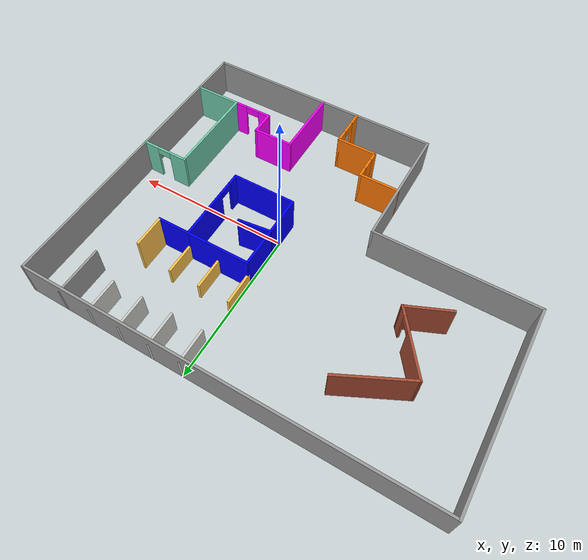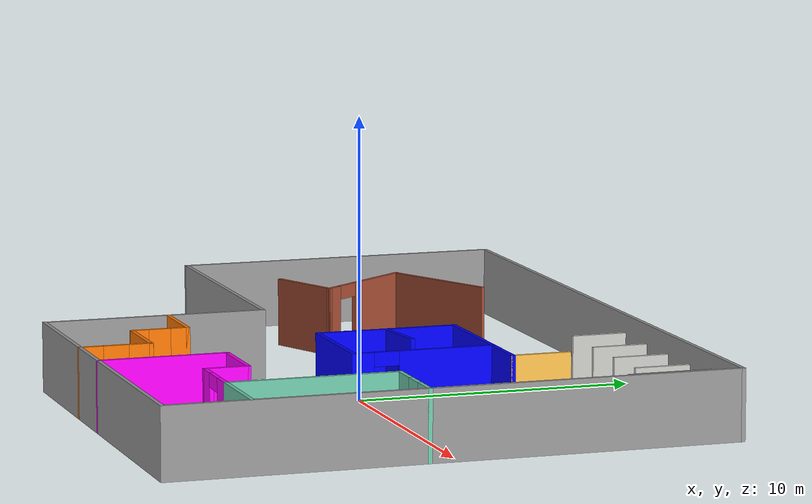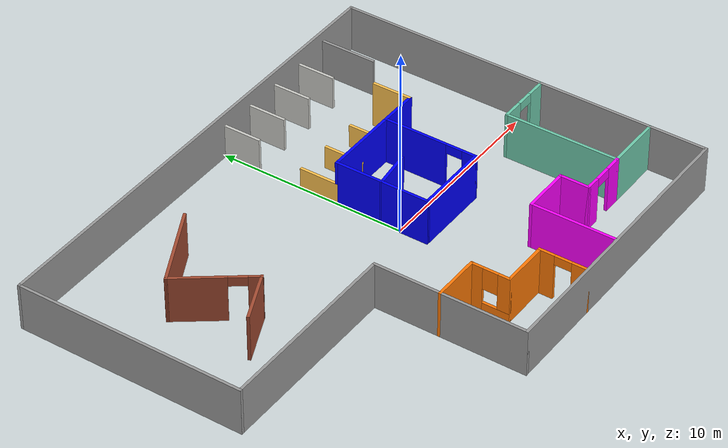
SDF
<?xml version='1.0'?>
<sdf version='1.6'>
  <model name='model'>
    <pose frame=''>-2.25 0 0 0 -0 0</pose>
    <link name='Wall_0'>
      <collision name='Wall_0_Collision'>
        <geometry>
          <box>
            <size>12.15 0.15 2.5</size>
          </box>
        </geometry>
        <pose frame=''>0 0 1.25 0 -0 0</pose>
      </collision>
      <visual name='Wall_0_Visual'>
        <pose frame=''>0 0 1.25 0 -0 0</pose>
        <geometry>
          <box>
            <size>12.15 0.15 2.5</size>
          </box>
        </geometry>
        <material>
          <script>
            <uri>file://media/materials/scripts/gazebo.material</uri>
            <name>Gazebo/Grey</name>
          </script>
          <ambient>1 1 1 1</ambient>
        </material>
        <meta>
          <layer>0</layer>
        </meta>
      </visual>
      <pose frame=''>-12.75 4 0 0 0 -1.5708</pose>
    </link>
    <link name='Wall_1'>
      <collision name='Wall_1_Collision'>
        <geometry>
          <box>
            <size>10.15 0.15 2.5</size>
          </box>
        </geometry>
        <pose frame=''>0 0 1.25 0 -0 0</pose>
      </collision>
      <visual name='Wall_1_Visual'>
        <pose frame=''>0 0 1.25 0 -0 0</pose>
        <geometry>
          <box>
            <size>10.15 0.15 2.5</size>
          </box>
        </geometry>
        <material>
          <script>
            <uri>file://media/materials/scripts/gazebo.material</uri>
            <name>Gazebo/Grey</name>
          </script>
          <ambient>1 1 1 1</ambient>
        </material>
        <meta>
          <layer>0</layer>
        </meta>
      </visual>
      <pose frame=''>-7.75 -2 0 0 -0 0</pose>
    </link>
    <link name='Wall_11'>
      <collision name='Wall_11_Collision'>
        <geometry>
          <box>
            <size>5.15 0.15 2.5</size>
          </box>
        </geometry>
        <pose frame=''>0 0 1.25 0 -0 0</pose>
      </collision>
      <visual name='Wall_11_Visual'>
        <pose frame=''>0 0 1.25 0 -0 0</pose>
        <geometry>
          <box>
            <size>5.15 0.15 2.5</size>
          </box>
        </geometry>
        <material>
          <script>
            <uri>file://media/materials/scripts/gazebo.material</uri>
            <name>Gazebo/Grey</name>
          </script>
          <ambient>0 0 1 1</ambient>
        </material>
        <meta>
          <layer>0</layer>
        </meta>
      </visual>
      <pose frame=''>2.25 1 0 0 0 -1.5708</pose>
    </link>
    <link name='Wall_12'>
      <collision name='Wall_12_Collision'>
        <geometry>
          <box>
            <size>4.15 0.15 2.5</size>
          </box>
        </geometry>
        <pose frame=''>0 0 1.25 0 -0 0</pose>
      </collision>
      <visual name='Wall_12_Visual'>
        <pose frame=''>0 0 1.25 0 -0 0</pose>
        <geometry>
          <box>
            <size>4.15 0.15 2.5</size>
          </box>
        </geometry>
        <material>
          <script>
            <uri>file://media/materials/scripts/gazebo.material</uri>
            <name>Gazebo/Grey</name>
          </script>
          <ambient>0 0 1 1</ambient>
        </material>
        <meta>
          <layer>0</layer>
        </meta>
      </visual>
      <pose frame=''>4.25 -1.5 0 0 -0 0</pose>
    </link>
    <link name='Wall_13'>
      <pose frame=''>6.25 1 0 0 -0 1.5708</pose>
      <visual name='Wall_13_Visual_0'>
        <pose frame=''>-2.18435 0 1.25 0 -0 0</pose>
        <geometry>
          <box>
            <size>0.781301 0.15 2.5</size>
          </box>
        </geometry>
        <material>
          <script>
            <uri>file://media/materials/scripts/gazebo.material</uri>
            <name>Gazebo/Grey</name>
          </script>
          <ambient>0 0 1 1</ambient>
        </material>
        <meta>
          <layer>0</layer>
        </meta>
      </visual>
      <collision name='Wall_13_Collision_0'>
        <geometry>
          <box>
            <size>0.781301 0.15 2.5</size>
          </box>
        </geometry>
        <pose frame=''>-2.18435 0 1.25 0 -0 0</pose>
      </collision>
      <visual name='Wall_13_Visual_1'>
        <pose frame=''>0.840651 0 1.25 0 -0 0</pose>
        <geometry>
          <box>
            <size>3.4687 0.15 2.5</size>
          </box>
        </geometry>
        <material>
          <script>
            <uri>file://media/materials/scripts/gazebo.material</uri>
            <name>Gazebo/Grey</name>
          </script>
          <ambient>0 0 1 1</ambient>
        </material>
        <meta>
          <layer>0</layer>
        </meta>
      </visual>
      <collision name='Wall_13_Collision_1'>
        <geometry>
          <box>
            <size>3.4687 0.15 2.5</size>
          </box>
        </geometry>
        <pose frame=''>0.840651 0 1.25 0 -0 0</pose>
      </collision>
      <visual name='Wall_13_Visual_2'>
        <pose frame=''>-1.3437 0 2.25 0 -0 0</pose>
        <geometry>
          <box>
            <size>0.9 0.15 0.5</size>
          </box>
        </geometry>
        <material>
          <script>
            <uri>file://media/materials/scripts/gazebo.material</uri>
            <name>Gazebo/Grey</name>
          </script>
          <ambient>0 0 1 1</ambient>
        </material>
        <meta>
          <layer>0</layer>
        </meta>
      </visual>
      <collision name='Wall_13_Collision_2'>
        <geometry>
          <box>
            <size>0.9 0.15 0.5</size>
          </box>
        </geometry>
        <pose frame=''>-1.3437 0 2.25 0 -0 0</pose>
      </collision>
    </link>
    <link name='Wall_16'>
      <collision name='Wall_16_Collision'>
        <geometry>
          <box>
            <size>4.15 0.15 2.5</size>
          </box>
        </geometry>
        <pose frame=''>0 0 1.25 0 -0 0</pose>
      </collision>
      <visual name='Wall_16_Visual'>
        <pose frame=''>0 0 1.25 0 -0 0</pose>
        <geometry>
          <box>
            <size>4.15 0.15 2.5</size>
          </box>
        </geometry>
        <material>
          <script>
            <uri>file://media/materials/scripts/gazebo.material</uri>
            <name>Gazebo/Grey</name>
          </script>
          <ambient>0 0 1 1</ambient>
        </material>
        <meta>
          <layer>0</layer>
        </meta>
      </visual>
      <pose frame=''>4.25 3.5 0 0 -0 0</pose>
    </link>
    <link name='Wall_18'>
      <collision name='Wall_18_Collision'>
        <geometry>
          <box>
            <size>2.15 0.15 1.85</size>
          </box>
        </geometry>
        <pose frame=''>0 0 0.925 0 -0 0</pose>
      </collision>
      <visual name='Wall_18_Visual'>
        <pose frame=''>0 0 0.925 0 -0 0</pose>
        <geometry>
          <box>
            <size>2.15 0.15 1.85</size>
          </box>
        </geometry>
        <material>
          <script>
            <uri>file://media/materials/scripts/gazebo.material</uri>
            <name>Gazebo/CeilingTiled</name>
          </script>
          <ambient>0 0.333333 0.498039 1</ambient>
        </material>
        <meta>
          <layer>0</layer>
        </meta>
      </visual>
      <pose frame=''>2.25 9 0 0 0 -1.5708</pose>
    </link>
    <link name='Wall_2'>
      <collision name='Wall_2_Collision'>
        <geometry>
          <box>
            <size>8.15 0.15 2.5</size>
          </box>
        </geometry>
        <pose frame=''>0 0 1.25 0 -0 0</pose>
      </collision>
      <visual name='Wall_2_Visual'>
        <pose frame=''>0 0 1.25 0 -0 0</pose>
        <geometry>
          <box>
            <size>8.15 0.15 2.5</size>
          </box>
        </geometry>
        <material>
          <script>
            <uri>file://media/materials/scripts/gazebo.material</uri>
            <name>Gazebo/Grey</name>
          </script>
          <ambient>1 1 1 1</ambient>
        </material>
        <meta>
          <layer>0</layer>
        </meta>
      </visual>
      <pose frame=''>-2.75 -6 0 0 0 -1.5708</pose>
    </link>
    <link name='Wall_20'>
      <collision name='Wall_20_Collision'>
        <geometry>
          <box>
            <size>2.15 0.15 1.8</size>
          </box>
        </geometry>
        <pose frame=''>0 0 0.9 0 -0 0</pose>
      </collision>
      <visual name='Wall_20_Visual'>
        <pose frame=''>0 0 0.9 0 -0 0</pose>
        <geometry>
          <box>
            <size>2.15 0.15 1.8</size>
          </box>
        </geometry>
        <material>
          <script>
            <uri>file://media/materials/scripts/gazebo.material</uri>
            <name>Gazebo/CeilingTiled</name>
          </script>
          <ambient>0 0.333333 0.498039 1</ambient>
        </material>
        <meta>
          <layer>0</layer>
        </meta>
      </visual>
      <pose frame=''>4.25 9 0 0 0 -1.5708</pose>
    </link>
    <link name='Wall_22'>
      <collision name='Wall_22_Collision'>
        <geometry>
          <box>
            <size>2.15 0.15 1.8</size>
          </box>
        </geometry>
        <pose frame=''>0 0 0.9 0 -0 0</pose>
      </collision>
      <visual name='Wall_22_Visual'>
        <pose frame=''>0 0 0.9 0 -0 0</pose>
        <geometry>
          <box>
            <size>2.15 0.15 1.8</size>
          </box>
        </geometry>
        <material>
          <script>
            <uri>file://media/materials/scripts/gazebo.material</uri>
            <name>Gazebo/CeilingTiled</name>
          </script>
          <ambient>0 0.333333 0.498039 1</ambient>
        </material>
        <meta>
          <layer>0</layer>
        </meta>
      </visual>
      <pose frame=''>6.25 9 0 0 0 -1.5708</pose>
    </link>
    <link name='Wall_24'>
      <collision name='Wall_24_Collision'>
        <geometry>
          <box>
            <size>2.15 0.15 1.8</size>
          </box>
        </geometry>
        <pose frame=''>0 0 0.9 0 -0 0</pose>
      </collision>
      <visual name='Wall_24_Visual'>
        <pose frame=''>0 0 0.9 0 -0 0</pose>
        <geometry>
          <box>
            <size>2.15 0.15 1.8</size>
          </box>
        </geometry>
        <material>
          <script>
            <uri>file://media/materials/scripts/gazebo.material</uri>
            <name>Gazebo/CeilingTiled</name>
          </script>
          <ambient>0 0.333333 0.498039 1</ambient>
        </material>
        <meta>
          <layer>0</layer>
        </meta>
      </visual>
      <pose frame=''>8.25 9 0 0 0 -1.5708</pose>
    </link>
    <link name='Wall_26'>
      <collision name='Wall_26_Collision'>
        <geometry>
          <box>
            <size>2.15 0.15 1.25</size>
          </box>
        </geometry>
        <pose frame=''>0 0 0.625 0 -0 0</pose>
      </collision>
      <visual name='Wall_26_Visual'>
        <pose frame=''>0 0 0.625 0 -0 0</pose>
        <geometry>
          <box>
            <size>2.15 0.15 1.25</size>
          </box>
        </geometry>
        <material>
          <script>
            <uri>file://media/materials/scripts/gazebo.material</uri>
            <name>Gazebo/Grey</name>
          </script>
          <ambient>1 0.764706 0.305882 1</ambient>
        </material>
        <meta>
          <layer>0</layer>
        </meta>
      </visual>
      <pose frame=''>2.25 4.5 0 0 0 -1.5708</pose>
    </link>
    <link name='Wall_28'>
      <collision name='Wall_28_Collision'>
        <geometry>
          <box>
            <size>2.15 0.15 1.25</size>
          </box>
        </geometry>
        <pose frame=''>0 0 0.625 0 -0 0</pose>
      </collision>
      <visual name='Wall_28_Visual'>
        <pose frame=''>0 0 0.625 0 -0 0</pose>
        <geometry>
          <box>
            <size>2.15 0.15 1.25</size>
          </box>
        </geometry>
        <material>
          <script>
            <uri>file://media/materials/scripts/gazebo.material</uri>
            <name>Gazebo/Grey</name>
          </script>
          <ambient>1 0.764706 0.305882 1</ambient>
        </material>
        <meta>
          <layer>0</layer>
        </meta>
      </visual>
      <pose frame=''>4.25 4.5 0 0 -0 1.5708</pose>
    </link>
    <link name='Wall_3'>
      <collision name='Wall_3_Collision'>
        <geometry>
          <box>
            <size>15.65 0.15 2.5</size>
          </box>
        </geometry>
        <pose frame=''>0 0 1.25 0 -0 0</pose>
      </collision>
      <visual name='Wall_3_Visual'>
        <pose frame=''>0 0 1.25 0 -0 0</pose>
        <geometry>
          <box>
            <size>15.65 0.15 2.5</size>
          </box>
        </geometry>
        <material>
          <script>
            <uri>file://media/materials/scripts/gazebo.material</uri>
            <name>Gazebo/Grey</name>
          </script>
          <ambient>1 1 1 1</ambient>
        </material>
        <meta>
          <layer>0</layer>
        </meta>
      </visual>
      <pose frame=''>5 -10 0 0 -0 0</pose>
    </link>
    <link name='Wall_30'>
      <collision name='Wall_30_Collision'>
        <geometry>
          <box>
            <size>2.15 0.15 1.25</size>
          </box>
        </geometry>
        <pose frame=''>0 0 0.625 0 -0 0</pose>
      </collision>
      <visual name='Wall_30_Visual'>
        <pose frame=''>0 0 0.625 0 -0 0</pose>
        <geometry>
          <box>
            <size>2.15 0.15 1.25</size>
          </box>
        </geometry>
        <material>
          <script>
            <uri>file://media/materials/scripts/gazebo.material</uri>
            <name>Gazebo/Grey</name>
          </script>
          <ambient>1 0.764706 0.305882 1</ambient>
        </material>
        <meta>
          <layer>0</layer>
        </meta>
      </visual>
      <pose frame=''>6.25 4.5 0 0 0 -1.5708</pose>
    </link>
    <link name='Wall_32'>
      <collision name='Wall_32_Collision'>
        <geometry>
          <box>
            <size>3.15 0.15 2</size>
          </box>
        </geometry>
        <pose frame=''>0 0 1 0 -0 0</pose>
      </collision>
      <visual name='Wall_32_Visual'>
        <pose frame=''>0 0 1 0 -0 0</pose>
        <geometry>
          <box>
            <size>3.15 0.15 2</size>
          </box>
        </geometry>
        <material>
          <script>
            <uri>file://media/materials/scripts/gazebo.material</uri>
            <name>Gazebo/Grey</name>
          </script>
          <ambient>0.207843 0.207843 0.207843 1</ambient>
        </material>
        <meta>
          <layer>0</layer>
        </meta>
      </visual>
      <pose frame=''>10.25 8.5 0 0 0 -1.5708</pose>
    </link>
    <link name='Wall_34'>
      <collision name='Wall_34_Collision'>
        <geometry>
          <box>
            <size>2.15 0.15 2.5</size>
          </box>
        </geometry>
        <pose frame=''>0 0 1.25 0 -0 0</pose>
      </collision>
      <visual name='Wall_34_Visual'>
        <pose frame=''>0 0 1.25 0 -0 0</pose>
        <geometry>
          <box>
            <size>2.15 0.15 2.5</size>
          </box>
        </geometry>
        <material>
          <script>
            <uri>file://media/materials/scripts/gazebo.material</uri>
            <name>Gazebo/Grey</name>
          </script>
          <ambient>1 0.764706 0.305882 1</ambient>
        </material>
        <meta>
          <layer>0</layer>
        </meta>
      </visual>
      <pose frame=''>8.25 4.5 0 0 0 -1.5708</pose>
    </link>
    <link name='Wall_36'>
      <collision name='Wall_36_Collision'>
        <geometry>
          <box>
            <size>2.15 0.15 2.5</size>
          </box>
        </geometry>
        <pose frame=''>0 0 1.25 0 -0 0</pose>
      </collision>
      <visual name='Wall_36_Visual'>
        <pose frame=''>0 0 1.25 0 -0 0</pose>
        <geometry>
          <box>
            <size>2.15 0.15 2.5</size>
          </box>
        </geometry>
        <material>
          <script>
            <uri>file://media/materials/scripts/gazebo.material</uri>
            <name>Gazebo/Grey</name>
          </script>
          <ambient>0 0 1 1</ambient>
        </material>
        <meta>
          <layer>0</layer>
        </meta>
      </visual>
      <pose frame=''>7.25 3.5 0 0 -0 3.14159</pose>
    </link>
    <link name='Wall_38'>
      <collision name='Wall_38_Collision'>
        <geometry>
          <box>
            <size>2.65 0.15 2.5</size>
          </box>
        </geometry>
        <pose frame=''>0 0 1.25 0 -0 0</pose>
      </collision>
      <visual name='Wall_38_Visual'>
        <pose frame=''>0 0 1.25 0 -0 0</pose>
        <geometry>
          <box>
            <size>2.65 0.15 2.5</size>
          </box>
        </geometry>
        <material>
          <script>
            <uri>file://media/materials/scripts/gazebo.material</uri>
            <name>Gazebo/Grey</name>
          </script>
          <ambient>0.996078 0.47451 0.0196078 1</ambient>
        </material>
        <meta>
          <layer>0</layer>
        </meta>
      </visual>
      <pose frame=''>-1.5 -5.5 0 0 -0 0</pose>
    </link>
    <link name='Wall_39'>
      <pose frame=''>-0.25 -6.5 0 0 0 -1.5708</pose>
      <visual name='Wall_39_Visual_0'>
        <pose frame=''>-0.725651 0 1.25 0 -0 0</pose>
        <geometry>
          <box>
            <size>0.698699 0.15 2.5</size>
          </box>
        </geometry>
        <material>
          <script>
            <uri>file://media/materials/scripts/gazebo.material</uri>
            <name>Gazebo/Grey</name>
          </script>
          <ambient>0.996078 0.47451 0.0196078 1</ambient>
        </material>
        <meta>
          <layer>0</layer>
        </meta>
      </visual>
      <collision name='Wall_39_Collision_0'>
        <geometry>
          <box>
            <size>0.698699 0.15 2.5</size>
          </box>
        </geometry>
        <pose frame=''>-0.725651 0 1.25 0 -0 0</pose>
      </collision>
      <visual name='Wall_39_Visual_1'>
        <pose frame=''>0.349349 0 0.25 0 -0 0</pose>
        <geometry>
          <box>
            <size>1.4513 0.15 0.5</size>
          </box>
        </geometry>
        <material>
          <script>
            <uri>file://media/materials/scripts/gazebo.material</uri>
            <name>Gazebo/Grey</name>
          </script>
          <ambient>0.996078 0.47451 0.0196078 1</ambient>
        </material>
        <meta>
          <layer>0</layer>
        </meta>
      </visual>
      <collision name='Wall_39_Collision_1'>
        <geometry>
          <box>
            <size>1.4513 0.15 0.5</size>
          </box>
        </geometry>
        <pose frame=''>0.349349 0 0.25 0 -0 0</pose>
      </collision>
      <visual name='Wall_39_Visual_2'>
        <pose frame=''>0.749349 0 1.5 0 -0 0</pose>
        <geometry>
          <box>
            <size>0.651301 0.15 2</size>
          </box>
        </geometry>
        <material>
          <script>
            <uri>file://media/materials/scripts/gazebo.material</uri>
            <name>Gazebo/Grey</name>
          </script>
          <ambient>0.996078 0.47451 0.0196078 1</ambient>
        </material>
        <meta>
          <layer>0</layer>
        </meta>
      </visual>
      <collision name='Wall_39_Collision_2'>
        <geometry>
          <box>
            <size>0.651301 0.15 2</size>
          </box>
        </geometry>
        <pose frame=''>0.749349 0 1.5 0 -0 0</pose>
      </collision>
      <visual name='Wall_39_Visual_3'>
        <pose frame=''>0.023699 0 1.9 0 -0 0</pose>
        <geometry>
          <box>
            <size>0.8 0.15 1.2</size>
          </box>
        </geometry>
        <material>
          <script>
            <uri>file://media/materials/scripts/gazebo.material</uri>
            <name>Gazebo/Grey</name>
          </script>
          <ambient>0.996078 0.47451 0.0196078 1</ambient>
        </material>
        <meta>
          <layer>0</layer>
        </meta>
      </visual>
      <collision name='Wall_39_Collision_3'>
        <geometry>
          <box>
            <size>0.8 0.15 1.2</size>
          </box>
        </geometry>
        <pose frame=''>0.023699 0 1.9 0 -0 0</pose>
      </collision>
    </link>
    <link name='Wall_4'>
      <collision name='Wall_4_Collision'>
        <geometry>
          <box>
            <size>20.15 0.15 2.5</size>
          </box>
        </geometry>
        <pose frame=''>0 0 1.25 0 -0 0</pose>
      </collision>
      <visual name='Wall_4_Visual'>
        <pose frame=''>0 0 1.25 0 -0 0</pose>
        <geometry>
          <box>
            <size>20.15 0.15 2.5</size>
          </box>
        </geometry>
        <material>
          <script>
            <uri>file://media/materials/scripts/gazebo.material</uri>
            <name>Gazebo/Grey</name>
          </script>
          <ambient>1 1 1 1</ambient>
        </material>
        <meta>
          <layer>0</layer>
        </meta>
      </visual>
      <pose frame=''>12.75 0 0 0 -0 1.5708</pose>
    </link>
    <link name='Wall_40'>
      <collision name='Wall_40_Collision'>
        <geometry>
          <box>
            <size>2.65 0.15 2.5</size>
          </box>
        </geometry>
        <pose frame=''>0 0 1.25 0 -0 0</pose>
      </collision>
      <visual name='Wall_40_Visual'>
        <pose frame=''>0 0 1.25 0 -0 0</pose>
        <geometry>
          <box>
            <size>2.65 0.15 2.5</size>
          </box>
        </geometry>
        <material>
          <script>
            <uri>file://media/materials/scripts/gazebo.material</uri>
            <name>Gazebo/Grey</name>
          </script>
          <ambient>0.996078 0.47451 0.0196078 1</ambient>
        </material>
        <meta>
          <layer>0</layer>
        </meta>
      </visual>
      <pose frame=''>1 -7.5 0 0 -0 0</pose>
    </link>
    <link name='Wall_41'>
      <pose frame=''>2.25 -8.75 0 0 0 -1.5708</pose>
      <visual name='Wall_41_Visual_0'>
        <pose frame=''>-0.89065 0 1.25 0 -0 0</pose>
        <geometry>
          <box>
            <size>0.868699 0.15 2.5</size>
          </box>
        </geometry>
        <material>
          <script>
            <uri>file://media/materials/scripts/gazebo.material</uri>
            <name>Gazebo/Grey</name>
          </script>
          <ambient>0.996078 0.47451 0.0196078 1</ambient>
        </material>
        <meta>
          <layer>0</layer>
        </meta>
      </visual>
      <collision name='Wall_41_Collision_0'>
        <geometry>
          <box>
            <size>0.868699 0.15 2.5</size>
          </box>
        </geometry>
        <pose frame=''>-0.89065 0 1.25 0 -0 0</pose>
      </collision>
      <visual name='Wall_41_Visual_1'>
        <pose frame=''>0.88435 0 1.25 0 -0 0</pose>
        <geometry>
          <box>
            <size>0.881301 0.15 2.5</size>
          </box>
        </geometry>
        <material>
          <script>
            <uri>file://media/materials/scripts/gazebo.material</uri>
            <name>Gazebo/Grey</name>
          </script>
          <ambient>0.996078 0.47451 0.0196078 1</ambient>
        </material>
        <meta>
          <layer>0</layer>
        </meta>
      </visual>
      <collision name='Wall_41_Collision_1'>
        <geometry>
          <box>
            <size>0.881301 0.15 2.5</size>
          </box>
        </geometry>
        <pose frame=''>0.88435 0 1.25 0 -0 0</pose>
      </collision>
      <visual name='Wall_41_Visual_2'>
        <pose frame=''>-0.006301 0 2.25 0 -0 0</pose>
        <geometry>
          <box>
            <size>0.9 0.15 0.5</size>
          </box>
        </geometry>
        <material>
          <script>
            <uri>file://media/materials/scripts/gazebo.material</uri>
            <name>Gazebo/Grey</name>
          </script>
          <ambient>0.996078 0.47451 0.0196078 1</ambient>
        </material>
        <meta>
          <layer>0</layer>
        </meta>
      </visual>
      <collision name='Wall_41_Collision_2'>
        <geometry>
          <box>
            <size>0.9 0.15 0.5</size>
          </box>
        </geometry>
        <pose frame=''>-0.006301 0 2.25 0 -0 0</pose>
      </collision>
    </link>
    <link name='Wall_43'>
      <pose frame=''>11.25 -1 0 0 -0 3.14159</pose>
      <visual name='Wall_43_Visual_0'>
        <pose frame=''>-1.02562 0 1.25 0 -0 0</pose>
        <geometry>
          <box>
            <size>1.09877 0.15 2.5</size>
          </box>
        </geometry>
        <material>
          <script>
            <uri>file://media/materials/scripts/gazebo.material</uri>
            <name>Gazebo/Grey</name>
          </script>
          <ambient>0.435294 0.796078 0.67451 1</ambient>
        </material>
        <meta>
          <layer>0</layer>
        </meta>
      </visual>
      <collision name='Wall_43_Collision_0'>
        <geometry>
          <box>
            <size>1.09877 0.15 2.5</size>
          </box>
        </geometry>
        <pose frame=''>-1.02562 0 1.25 0 -0 0</pose>
      </collision>
      <visual name='Wall_43_Visual_1'>
        <pose frame=''>0.999384 0 1.25 0 -0 0</pose>
        <geometry>
          <box>
            <size>1.15123 0.15 2.5</size>
          </box>
        </geometry>
        <material>
          <script>
            <uri>file://media/materials/scripts/gazebo.material</uri>
            <name>Gazebo/Grey</name>
          </script>
          <ambient>0.435294 0.796078 0.67451 1</ambient>
        </material>
        <meta>
          <layer>0</layer>
        </meta>
      </visual>
      <collision name='Wall_43_Collision_1'>
        <geometry>
          <box>
            <size>1.15123 0.15 2.5</size>
          </box>
        </geometry>
        <pose frame=''>0.999384 0 1.25 0 -0 0</pose>
      </collision>
      <visual name='Wall_43_Visual_2'>
        <pose frame=''>-0.026232 0 2.25 0 -0 0</pose>
        <geometry>
          <box>
            <size>0.9 0.15 0.5</size>
          </box>
        </geometry>
        <material>
          <script>
            <uri>file://media/materials/scripts/gazebo.material</uri>
            <name>Gazebo/Grey</name>
          </script>
          <ambient>0.435294 0.796078 0.67451 1</ambient>
        </material>
        <meta>
          <layer>0</layer>
        </meta>
      </visual>
      <collision name='Wall_43_Collision_2'>
        <geometry>
          <box>
            <size>0.9 0.15 0.5</size>
          </box>
        </geometry>
        <pose frame=''>-0.026232 0 2.25 0 -0 0</pose>
      </collision>
    </link>
    <link name='Wall_44'>
      <collision name='Wall_44_Collision'>
        <geometry>
          <box>
            <size>6.15 0.15 2.5</size>
          </box>
        </geometry>
        <pose frame=''>0 0 1.25 0 -0 0</pose>
      </collision>
      <visual name='Wall_44_Visual'>
        <pose frame=''>0 0 1.25 0 -0 0</pose>
        <geometry>
          <box>
            <size>6.15 0.15 2.5</size>
          </box>
        </geometry>
        <material>
          <script>
            <uri>file://media/materials/scripts/gazebo.material</uri>
            <name>Gazebo/Grey</name>
          </script>
          <ambient>0.435294 0.796078 0.67451 1</ambient>
        </material>
        <meta>
          <layer>0</layer>
        </meta>
      </visual>
      <pose frame=''>9.75 -4 0 0 0 -1.5708</pose>
    </link>
    <link name='Wall_45'>
      <pose frame=''>8.5 -7 0 0 -0 3.14159</pose>
      <visual name='Wall_45_Visual_0'>
        <pose frame=''>-0.865616 0 1.25 0 -0 0</pose>
        <geometry>
          <box>
            <size>0.918768 0.15 2.5</size>
          </box>
        </geometry>
        <material>
          <script>
            <uri>file://media/materials/scripts/gazebo.material</uri>
            <name>Gazebo/Grey</name>
          </script>
          <ambient>1 0 1 1</ambient>
        </material>
        <meta>
          <layer>0</layer>
        </meta>
      </visual>
      <collision name='Wall_45_Collision_0'>
        <geometry>
          <box>
            <size>0.918768 0.15 2.5</size>
          </box>
        </geometry>
        <pose frame=''>-0.865616 0 1.25 0 -0 0</pose>
      </collision>
      <visual name='Wall_45_Visual_1'>
        <pose frame=''>0.909384 0 1.25 0 -0 0</pose>
        <geometry>
          <box>
            <size>0.831232 0.15 2.5</size>
          </box>
        </geometry>
        <material>
          <script>
            <uri>file://media/materials/scripts/gazebo.material</uri>
            <name>Gazebo/Grey</name>
          </script>
          <ambient>1 0 1 1</ambient>
        </material>
        <meta>
          <layer>0</layer>
        </meta>
      </visual>
      <collision name='Wall_45_Collision_1'>
        <geometry>
          <box>
            <size>0.831232 0.15 2.5</size>
          </box>
        </geometry>
        <pose frame=''>0.909384 0 1.25 0 -0 0</pose>
      </collision>
      <visual name='Wall_45_Visual_2'>
        <pose frame=''>0.043768 0 2.25 0 -0 0</pose>
        <geometry>
          <box>
            <size>0.9 0.15 0.5</size>
          </box>
        </geometry>
        <material>
          <script>
            <uri>file://media/materials/scripts/gazebo.material</uri>
            <name>Gazebo/Grey</name>
          </script>
          <ambient>1 0 1 1</ambient>
        </material>
        <meta>
          <layer>0</layer>
        </meta>
      </visual>
      <collision name='Wall_45_Collision_2'>
        <geometry>
          <box>
            <size>0.9 0.15 0.5</size>
          </box>
        </geometry>
        <pose frame=''>0.043768 0 2.25 0 -0 0</pose>
      </collision>
    </link>
    <link name='Wall_46'>
      <collision name='Wall_46_Collision'>
        <geometry>
          <box>
            <size>1.65 0.15 2.5</size>
          </box>
        </geometry>
        <pose frame=''>0 0 1.25 0 -0 0</pose>
      </collision>
      <visual name='Wall_46_Visual'>
        <pose frame=''>0 0 1.25 0 -0 0</pose>
        <geometry>
          <box>
            <size>1.65 0.15 2.5</size>
          </box>
        </geometry>
        <material>
          <script>
            <uri>file://media/materials/scripts/gazebo.material</uri>
            <name>Gazebo/Grey</name>
          </script>
          <ambient>1 0 1 1</ambient>
        </material>
        <meta>
          <layer>0</layer>
        </meta>
      </visual>
      <pose frame=''>7.25 -6.25 0 0 -0 1.5708</pose>
    </link>
    <link name='Wall_47'>
      <collision name='Wall_47_Collision'>
        <geometry>
          <box>
            <size>2.65 0.15 2.5</size>
          </box>
        </geometry>
        <pose frame=''>0 0 1.25 0 -0 0</pose>
      </collision>
      <visual name='Wall_47_Visual'>
        <pose frame=''>0 0 1.25 0 -0 0</pose>
        <geometry>
          <box>
            <size>2.65 0.15 2.5</size>
          </box>
        </geometry>
        <material>
          <script>
            <uri>file://media/materials/scripts/gazebo.material</uri>
            <name>Gazebo/Grey</name>
          </script>
          <ambient>1 0 1 1</ambient>
        </material>
        <meta>
          <layer>0</layer>
        </meta>
      </visual>
      <pose frame=''>6 -5.5 0 0 -0 3.14159</pose>
    </link>
    <link name='Wall_48'>
      <collision name='Wall_48_Collision'>
        <geometry>
          <box>
            <size>4.65 0.15 2.5</size>
          </box>
        </geometry>
        <pose frame=''>0 0 1.25 0 -0 0</pose>
      </collision>
      <visual name='Wall_48_Visual'>
        <pose frame=''>0 0 1.25 0 -0 0</pose>
        <geometry>
          <box>
            <size>4.65 0.15 2.5</size>
          </box>
        </geometry>
        <material>
          <script>
            <uri>file://media/materials/scripts/gazebo.material</uri>
            <name>Gazebo/Grey</name>
          </script>
          <ambient>1 0 1 1</ambient>
        </material>
        <meta>
          <layer>0</layer>
        </meta>
      </visual>
      <pose frame=''>4.75 -7.75 0 0 0 -1.5708</pose>
    </link>
    <link name='Wall_5'>
      <collision name='Wall_5_Collision'>
        <geometry>
          <box>
            <size>25.65 0.15 2.5</size>
          </box>
        </geometry>
        <pose frame=''>0 0 1.25 0 -0 0</pose>
      </collision>
      <visual name='Wall_5_Visual'>
        <pose frame=''>0 0 1.25 0 -0 0</pose>
        <geometry>
          <box>
            <size>25.65 0.15 2.5</size>
          </box>
        </geometry>
        <material>
          <script>
            <uri>file://media/materials/scripts/gazebo.material</uri>
            <name>Gazebo/Grey</name>
          </script>
          <ambient>1 1 1 1</ambient>
        </material>
        <meta>
          <layer>0</layer>
        </meta>
      </visual>
      <pose frame=''>0 10 0 0 -0 3.14159</pose>
    </link>
    <link name='Wall_50'>
      <collision name='Wall_50_Collision'>
        <geometry>
          <box>
            <size>2.16556 0.15 2.5</size>
          </box>
        </geometry>
        <pose frame=''>0 0 1.25 0 -0 0</pose>
      </collision>
      <visual name='Wall_50_Visual'>
        <pose frame=''>0 0 1.25 0 -0 0</pose>
        <geometry>
          <box>
            <size>2.16556 0.15 2.5</size>
          </box>
        </geometry>
        <material>
          <script>
            <uri>file://media/materials/scripts/gazebo.material</uri>
            <name>Gazebo/Grey</name>
          </script>
          <ambient>0 0 1 1</ambient>
        </material>
        <meta>
          <layer>0</layer>
        </meta>
      </visual>
      <pose frame=''>3.25 1.125 0 0 -0 0.124355</pose>
    </link>
    <link name='Wall_52'>
      <collision name='Wall_52_Collision'>
        <geometry>
          <box>
            <size>3.15 0.15 2.5</size>
          </box>
        </geometry>
        <pose frame=''>0 0 1.25 0 -0 0</pose>
      </collision>
      <visual name='Wall_52_Visual'>
        <pose frame=''>0 0 1.25 0 -0 0</pose>
        <geometry>
          <box>
            <size>3.15 0.15 2.5</size>
          </box>
        </geometry>
        <material>
          <script>
            <uri>file://media/materials/scripts/gazebo.material</uri>
            <name>Gazebo/Grey</name>
          </script>
          <ambient>0.435294 0.796078 0.67451 1</ambient>
        </material>
        <meta>
          <layer>0</layer>
        </meta>
      </visual>
      <pose frame=''>11.25 -7 0 0 -0 0</pose>
    </link>
    <link name='Wall_7'>
      <collision name='Wall_7_Collision'>
        <geometry>
          <box>
            <size>4.62214 0.15 2.5</size>
          </box>
        </geometry>
        <pose frame=''>0 0 1.25 0 -0 0</pose>
      </collision>
      <visual name='Wall_7_Visual'>
        <pose frame=''>0 0 1.25 0 -0 0</pose>
        <geometry>
          <box>
            <size>4.62214 0.15 2.5</size>
          </box>
        </geometry>
        <material>
          <script>
            <uri>file://media/materials/scripts/gazebo.material</uri>
            <name>Gazebo/Bricks</name>
          </script>
          <ambient>1 1 1 1</ambient>
        </material>
        <meta>
          <layer>0</layer>
        </meta>
      </visual>
      <pose frame=''>-6.75 6 0 0 0 -2.67794</pose>
    </link>
    <link name='Wall_8'>
      <pose frame=''>-7.5 3.3 0 0 0 -0.936774</pose>
      <visual name='Wall_8_Visual_0'>
        <pose frame=''>-0.791368 0 1.25 0 -0 0</pose>
        <geometry>
          <box>
            <size>2.78745 0.15 2.5</size>
          </box>
        </geometry>
        <material>
          <script>
            <uri>file://media/materials/scripts/gazebo.material</uri>
            <name>Gazebo/Bricks</name>
          </script>
          <ambient>1 1 1 1</ambient>
        </material>
        <meta>
          <layer>0</layer>
        </meta>
      </visual>
      <collision name='Wall_8_Collision_0'>
        <geometry>
          <box>
            <size>2.78745 0.15 2.5</size>
          </box>
        </geometry>
        <pose frame=''>-0.791368 0 1.25 0 -0 0</pose>
      </collision>
      <visual name='Wall_8_Visual_1'>
        <pose frame=''>1.84373 0 1.25 0 -0 0</pose>
        <geometry>
          <box>
            <size>0.682736 0.15 2.5</size>
          </box>
        </geometry>
        <material>
          <script>
            <uri>file://media/materials/scripts/gazebo.material</uri>
            <name>Gazebo/Bricks</name>
          </script>
          <ambient>1 1 1 1</ambient>
        </material>
        <meta>
          <layer>0</layer>
        </meta>
      </visual>
      <collision name='Wall_8_Collision_1'>
        <geometry>
          <box>
            <size>0.682736 0.15 2.5</size>
          </box>
        </geometry>
        <pose frame=''>1.84373 0 1.25 0 -0 0</pose>
      </collision>
      <visual name='Wall_8_Visual_2'>
        <pose frame=''>1.05236 0 2.25 0 -0 0</pose>
        <geometry>
          <box>
            <size>0.9 0.15 0.5</size>
          </box>
        </geometry>
        <material>
          <script>
            <uri>file://media/materials/scripts/gazebo.material</uri>
            <name>Gazebo/Bricks</name>
          </script>
          <ambient>1 1 1 1</ambient>
        </material>
        <meta>
          <layer>0</layer>
        </meta>
      </visual>
      <collision name='Wall_8_Collision_2'>
        <geometry>
          <box>
            <size>0.9 0.15 0.5</size>
          </box>
        </geometry>
        <pose frame=''>1.05236 0 2.25 0 -0 0</pose>
      </collision>
    </link>
    <link name='Wall_9'>
      <collision name='Wall_9_Collision'>
        <geometry>
          <box>
            <size>2.8813 0.15 2.5</size>
          </box>
        </geometry>
        <pose frame=''>0 0 1.25 0 -0 0</pose>
      </collision>
      <visual name='Wall_9_Visual'>
        <pose frame=''>0 0 1.25 0 -0 0</pose>
        <geometry>
          <box>
            <size>2.8813 0.15 2.5</size>
          </box>
        </geometry>
        <material>
          <script>
            <uri>file://media/materials/scripts/gazebo.material</uri>
            <name>Gazebo/Bricks</name>
          </script>
          <ambient>1 1 1 1</ambient>
        </material>
        <meta>
          <layer>0</layer>
        </meta>
      </visual>
      <pose frame=''>-7.5 1.05 0 0 0 -2.72709</pose>
    </link>
    <static>1</static>
  </model>
</sdf>
